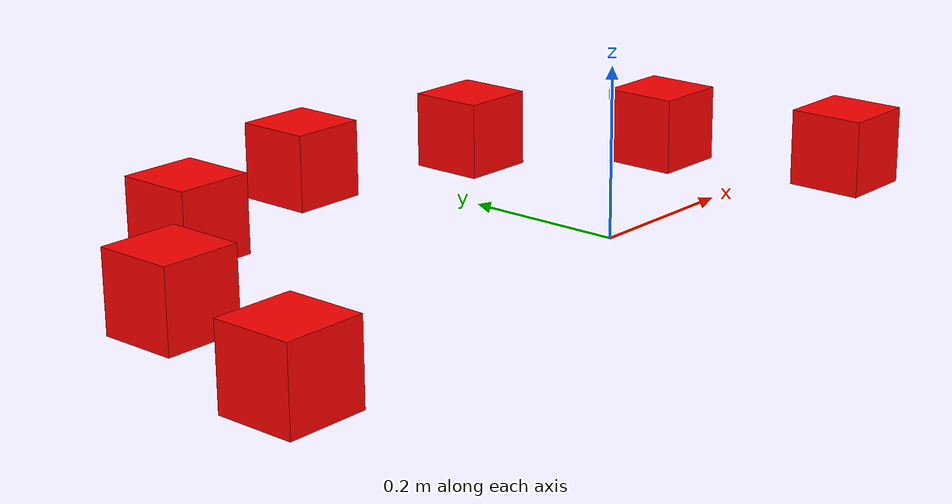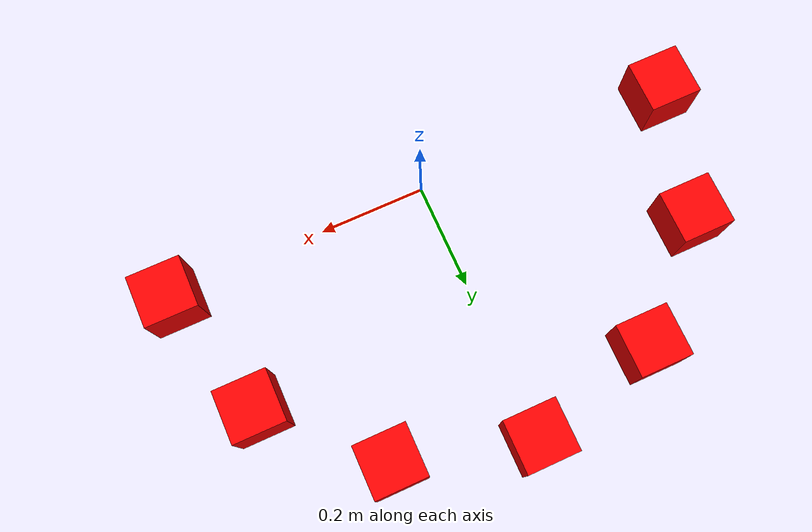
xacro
<!--
Copyright (C) 2023 eSOL Co.,Ltd. All rights reserved.
-->

<robot name="test_robot" xmlns:xacro="http://ros.org/wiki/xacro">
  <!--別のxacroファイルをインクルード-->
  <xacro:include filename="$(find xacro2)/xacro/module.xacro" />

  <!--インクルードしたxacroファイルのモジュールを利用-->
  <xacro:box_macro prefix="box4" parent="base_link" radius="120"/>
  <xacro:box_macro prefix="box5" parent="base_link" radius="150"/>
  <xacro:box_macro prefix="box6" parent="base_link" radius="180"/>
</robot>

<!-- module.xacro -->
<!--
Copyright (C) 2023 eSOL Co.,Ltd. All rights reserved.
-->

<robot name="test_robot" xmlns:xacro="http://ros.org/wiki/xacro">
  <material name="red">
    <color rgba="1.0 0.0 0.0 1.0"/>
  </material>

  <!--モジュールの定義-->
  <xacro:macro name="box_macro" params="prefix parent radius">
    <joint name="${prefix}_joint" type="fixed">
      <origin rpy="0 0 0" xyz="${0.5*cos(radians(radius))} ${0.5*sin(radians(radius))} 0"/>
      <parent link="${parent}"/>
      <child  link="${prefix}_link"/>
    </joint>

    <link name="${prefix}_link">
      <visual>
        <geometry>
          <box size="0.1 0.1 0.1" />
        </geometry>
        <material name="red"/>
      </visual>
    </link>
  </xacro:macro>

  <link name="base_link"/>

  <!--モジュールの利用-->
  <xacro:box_macro prefix="box0" parent="base_link" radius="0"/>
  <xacro:box_macro prefix="box1" parent="base_link" radius="30"/>
  <xacro:box_macro prefix="box2" parent="base_link" radius="60"/>
  <xacro:box_macro prefix="box3" parent="base_link" radius="90"/>
</robot>
